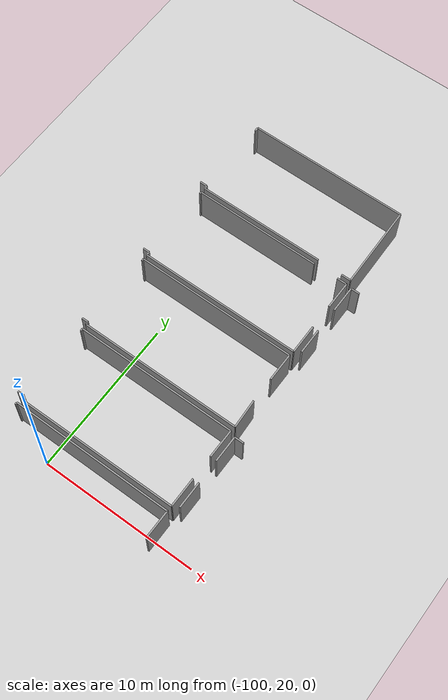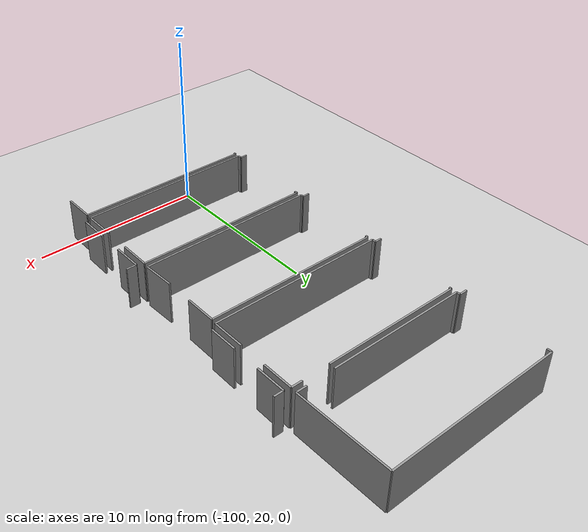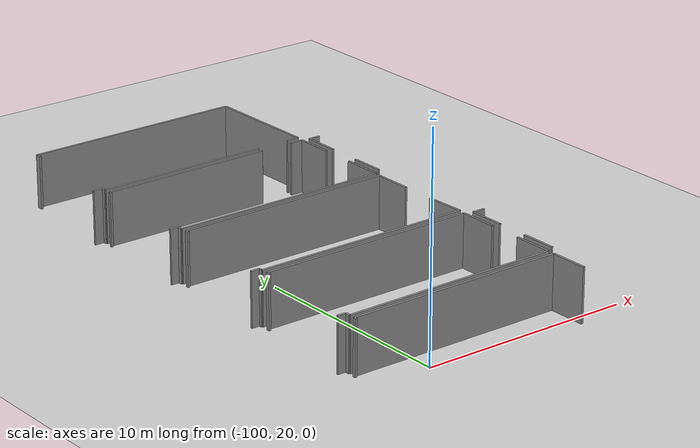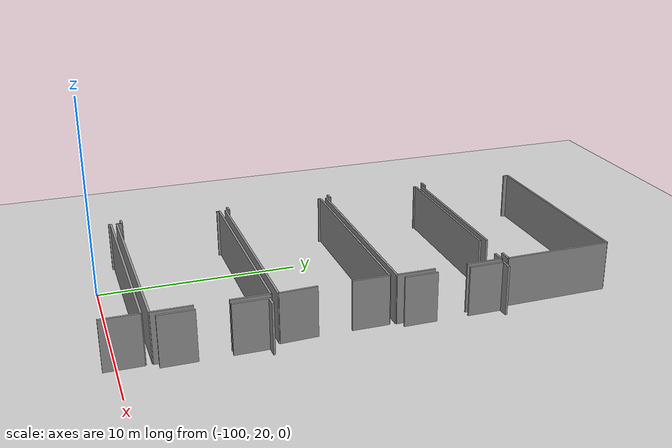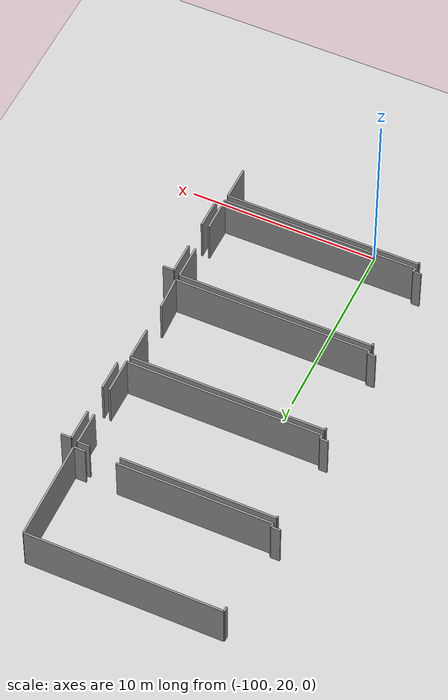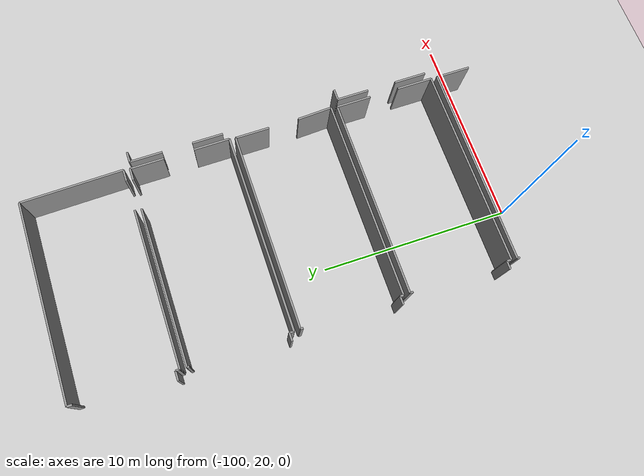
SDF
<sdf version="1.6">
 <world name="default">
  <model name="ground_plane">
   <static>1</static>
   <link name="link">
    <collision name="collision">
     <geometry><plane><normal>0 0 1</normal><size>100 100</size></plane></geometry>
     <surface><friction><ode><mu>100</mu><mu2>50</mu2></ode></friction></surface>
    </collision>
    <visual name="visual">
     <cast_shadows>0</cast_shadows>
     <geometry><plane><normal>0 0 1</normal><size>100 100</size></plane></geometry>
     <material>
      <script><uri>file://media/materials/scripts/gazebo.material</uri><name>Gazebo/Grey</name></script>
     </material>
    </visual>
   </link>
  </model>
  <model name="50015848">
   <static>1</static>
   <link name="Wall_205">
    <collision name="Wall_205_Collision">
     <geometry><box><size>1.6850091025 0.1 2.5</size></box></geometry>
     <pose>0.84250455125 0 1.25 0 0 0</pose>
    </collision>
    <visual name="Wall_205_Visual">
     <pose>0.84250455125 0 1.25 0 0 0</pose>
     <geometry><box><size>1.6850091025 0.1 2.5</size></box></geometry>
     <material>
      <script><uri>file://media/materials/scripts/gazebo.material</uri><name>Gazebo/Grey</name></script>
      <ambient>1 1 1 1</ambient>
     </material>
    </visual>
    <pose>39.7325704572 -21.994938122 0 0 0 1.57079632679</pose>
   </link>
   <link name="Wall_206">
    <collision name="Wall_206_Collision">
     <geometry><box><size>1.6943970466 0.1 2.5</size></box></geometry>
     <pose>0.847198523302 0 1.25 0 0 0</pose>
    </collision>
    <visual name="Wall_206_Visual">
     <pose>0.847198523302 0 1.25 0 0 0</pose>
     <geometry><box><size>1.6943970466 0.1 2.5</size></box></geometry>
     <material>
      <script><uri>file://media/materials/scripts/gazebo.material</uri><name>Gazebo/Grey</name></script>
      <ambient>1 1 1 1</ambient>
     </material>
    </visual>
    <pose>39.7325704572 -18.7918730851 0 0 0 1.57079632679</pose>
   </link>
   <link name="Wall_207">
    <collision name="Wall_207_Collision">
     <geometry><box><size>0.581037621552 0.1 2.5</size></box></geometry>
     <pose>0.290518810776 0 1.25 0 0 0</pose>
    </collision>
    <visual name="Wall_207_Visual">
     <pose>0.290518810776 0 1.25 0 0 0</pose>
     <geometry><box><size>0.581037621552 0.1 2.5</size></box></geometry>
     <material>
      <script><uri>file://media/materials/scripts/gazebo.material</uri><name>Gazebo/Grey</name></script>
      <ambient>1 1 1 1</ambient>
     </material>
    </visual>
    <pose>39.7325704572 -17.0974760385 0 0 0 0.0</pose>
   </link>
   <link name="Wall_215">
    <collision name="Wall_215_Collision">
     <geometry><box><size>1.63502464335 0.1 2.5</size></box></geometry>
     <pose>0.817512321677 0 1.25 0 0 0</pose>
    </collision>
    <visual name="Wall_215_Visual">
     <pose>0.817512321677 0 1.25 0 0 0</pose>
     <geometry><box><size>1.63502464335 0.1 2.5</size></box></geometry>
     <material>
      <script><uri>file://media/materials/scripts/gazebo.material</uri><name>Gazebo/Grey</name></script>
      <ambient>1 1 1 1</ambient>
     </material>
    </visual>
    <pose>39.7325704572 -10.8007028272 0 0 0 1.57079632679</pose>
   </link>
   <link name="Wall_216">
    <collision name="Wall_216_Collision">
     <geometry><box><size>1.71824749919 0.1 2.5</size></box></geometry>
     <pose>0.859123749596 0 1.25 0 0 0</pose>
    </collision>
    <visual name="Wall_216_Visual">
     <pose>0.859123749596 0 1.25 0 0 0</pose>
     <geometry><box><size>1.71824749919 0.1 2.5</size></box></geometry>
     <material>
      <script><uri>file://media/materials/scripts/gazebo.material</uri><name>Gazebo/Grey</name></script>
      <ambient>1 1 1 1</ambient>
     </material>
    </visual>
    <pose>39.7325704572 -7.56414566537 0 0 0 1.57079632679</pose>
   </link>
   <link name="Wall_217">
    <collision name="Wall_217_Collision">
     <geometry><box><size>0.550590235269 0.1 2.5</size></box></geometry>
     <pose>0.275295117635 0 1.25 0 0 0</pose>
    </collision>
    <visual name="Wall_217_Visual">
     <pose>0.275295117635 0 1.25 0 0 0</pose>
     <geometry><box><size>0.550590235269 0.1 2.5</size></box></geometry>
     <material>
      <script><uri>file://media/materials/scripts/gazebo.material</uri><name>Gazebo/Grey</name></script>
      <ambient>1 1 1 1</ambient>
     </material>
    </visual>
    <pose>39.7325704572 -5.84589816618 0 0 0 0.0</pose>
   </link>
   <link name="Wall_282">
    <collision name="Wall_282_Collision">
     <geometry><box><size>0.616305843995 0.1 2.5</size></box></geometry>
     <pose>0.308152921998 0 1.25 0 0 0</pose>
    </collision>
    <visual name="Wall_282_Visual">
     <pose>0.308152921998 0 1.25 0 0 0</pose>
     <geometry><box><size>0.616305843995 0.1 2.5</size></box></geometry>
     <material>
      <script><uri>file://media/materials/scripts/gazebo.material</uri><name>Gazebo/Grey</name></script>
      <ambient>1 1 1 1</ambient>
     </material>
    </visual>
    <pose>39.4039924135 -5.42699287658 0 0 0 3.14159265359</pose>
   </link>
   <link name="Wall_283">
    <collision name="Wall_283_Collision">
     <geometry><box><size>8.15989952363 0.1 2.5</size></box></geometry>
     <pose>4.07994976181 0 1.25 0 0 0</pose>
    </collision>
    <visual name="Wall_283_Visual">
     <pose>4.07994976181 0 1.25 0 0 0</pose>
     <geometry><box><size>8.15989952363 0.1 2.5</size></box></geometry>
     <material>
      <script><uri>file://media/materials/scripts/gazebo.material</uri><name>Gazebo/Grey</name></script>
      <ambient>1 1 1 1</ambient>
     </material>
    </visual>
    <pose>37.1610349574 -5.42699287658 0 0 0 3.14159265359</pose>
   </link>
   <link name="Wall_284">
    <collision name="Wall_284_Collision">
     <geometry><box><size>0.208818324252 0.1 2.5</size></box></geometry>
     <pose>0.104409162126 0 1.25 0 0 0</pose>
    </collision>
    <visual name="Wall_284_Visual">
     <pose>0.104409162126 0 1.25 0 0 0</pose>
     <geometry><box><size>0.208818324252 0.1 2.5</size></box></geometry>
     <material>
      <script><uri>file://media/materials/scripts/gazebo.material</uri><name>Gazebo/Grey</name></script>
      <ambient>1 1 1 1</ambient>
     </material>
    </visual>
    <pose>29.0011354338 -5.42699287658 0 0 0 1.57079632679</pose>
   </link>
   <link name="Wall_285">
    <collision name="Wall_285_Collision">
     <geometry><box><size>0.479292605725 0.1 2.5</size></box></geometry>
     <pose>0.239646302863 0 1.25 0 0 0</pose>
    </collision>
    <visual name="Wall_285_Visual">
     <pose>0.239646302863 0 1.25 0 0 0</pose>
     <geometry><box><size>0.479292605725 0.1 2.5</size></box></geometry>
     <material>
      <script><uri>file://media/materials/scripts/gazebo.material</uri><name>Gazebo/Grey</name></script>
      <ambient>1 1 1 1</ambient>
     </material>
    </visual>
    <pose>29.0011354338 -5.21817455233 0 0 0 3.14159265359</pose>
   </link>
   <link name="Wall_288">
    <collision name="Wall_288_Collision">
     <geometry><box><size>0.264892260655 0.1 2.5</size></box></geometry>
     <pose>0.132446130328 0 1.25 0 0 0</pose>
    </collision>
    <visual name="Wall_288_Visual">
     <pose>0.132446130328 0 1.25 0 0 0</pose>
     <geometry><box><size>0.264892260655 0.1 2.5</size></box></geometry>
     <material>
      <script><uri>file://media/materials/scripts/gazebo.material</uri><name>Gazebo/Grey</name></script>
      <ambient>1 1 1 1</ambient>
     </material>
    </visual>
    <pose>29.0011354338 -0.298384385565 0 0 0 1.57079632679</pose>
   </link>
   <link name="Wall_289">
    <collision name="Wall_289_Collision">
     <geometry><box><size>10.3188729393 0.1 2.5</size></box></geometry>
     <pose>5.15943646963 0 1.25 0 0 0</pose>
    </collision>
    <visual name="Wall_289_Visual">
     <pose>5.15943646963 0 1.25 0 0 0</pose>
     <geometry><box><size>10.3188729393 0.1 2.5</size></box></geometry>
     <material>
      <script><uri>file://media/materials/scripts/gazebo.material</uri><name>Gazebo/Grey</name></script>
      <ambient>1 1 1 1</ambient>
     </material>
    </visual>
    <pose>29.0011354338 -0.0334921249104 0 0 0 0.0</pose>
   </link>
   <link name="Wall_290">
    <collision name="Wall_290_Collision">
     <geometry><box><size>5.39415458411 0.1 2.5</size></box></geometry>
     <pose>2.69707729206 0 1.25 0 0 0</pose>
    </collision>
    <visual name="Wall_290_Visual">
     <pose>2.69707729206 0 1.25 0 0 0</pose>
     <geometry><box><size>5.39415458411 0.1 2.5</size></box></geometry>
     <material>
      <script><uri>file://media/materials/scripts/gazebo.material</uri><name>Gazebo/Grey</name></script>
      <ambient>1 1 1 1</ambient>
     </material>
    </visual>
    <pose>39.320008373 -0.0334921249104 0 0 0 -1.55522624392</pose>
   </link>
   <link name="Wall_291">
    <collision name="Wall_291_Collision">
     <geometry><box><size>10.3536337053 0.1 2.5</size></box></geometry>
     <pose>5.17681685263 0 1.25 0 0 0</pose>
    </collision>
    <visual name="Wall_291_Visual">
     <pose>5.17681685263 0 1.25 0 0 0</pose>
     <geometry><box><size>10.3536337053 0.1 2.5</size></box></geometry>
     <material>
      <script><uri>file://media/materials/scripts/gazebo.material</uri><name>Gazebo/Grey</name></script>
      <ambient>1 1 1 1</ambient>
     </material>
    </visual>
    <pose>39.36745555 -11.0465654714 0 0 0 3.14159265359</pose>
   </link>
   <link name="Wall_292">
    <collision name="Wall_292_Collision">
     <geometry><box><size>0.22734048424 0.1 2.5</size></box></geometry>
     <pose>0.11367024212 0 1.25 0 0 0</pose>
    </collision>
    <visual name="Wall_292_Visual">
     <pose>0.11367024212 0 1.25 0 0 0</pose>
     <geometry><box><size>0.22734048424 0.1 2.5</size></box></geometry>
     <material>
      <script><uri>file://media/materials/scripts/gazebo.material</uri><name>Gazebo/Grey</name></script>
      <ambient>1 1 1 1</ambient>
     </material>
    </visual>
    <pose>29.0138218447 -11.0465654714 0 0 0 1.57079632679</pose>
   </link>
   <link name="Wall_293">
    <collision name="Wall_293_Collision">
     <geometry><box><size>0.416368007409 0.1 2.5</size></box></geometry>
     <pose>0.208184003704 0 1.25 0 0 0</pose>
    </collision>
    <visual name="Wall_293_Visual">
     <pose>0.208184003704 0 1.25 0 0 0</pose>
     <geometry><box><size>0.416368007409 0.1 2.5</size></box></geometry>
     <material>
      <script><uri>file://media/materials/scripts/gazebo.material</uri><name>Gazebo/Grey</name></script>
      <ambient>1 1 1 1</ambient>
     </material>
    </visual>
    <pose>29.0138218447 -10.8192249872 0 0 0 3.14159265359</pose>
   </link>
   <link name="Wall_296">
    <collision name="Wall_296_Collision">
     <geometry><box><size>0.1240730991 0.1 2.5</size></box></geometry>
     <pose>0.06203654955 0 1.25 0 0 0</pose>
    </collision>
    <visual name="Wall_296_Visual">
     <pose>0.06203654955 0 1.25 0 0 0</pose>
     <geometry><box><size>0.1240730991 0.1 2.5</size></box></geometry>
     <material>
      <script><uri>file://media/materials/scripts/gazebo.material</uri><name>Gazebo/Grey</name></script>
      <ambient>1 1 1 1</ambient>
     </material>
    </visual>
    <pose>28.9846430995 -5.89309161492 0 0 0 1.57079632679</pose>
   </link>
   <link name="Wall_297">
    <collision name="Wall_297_Collision">
     <geometry><box><size>8.1461981998 0.1 2.5</size></box></geometry>
     <pose>4.0730990999 0 1.25 0 0 0</pose>
    </collision>
    <visual name="Wall_297_Visual">
     <pose>4.0730990999 0 1.25 0 0 0</pose>
     <geometry><box><size>8.1461981998 0.1 2.5</size></box></geometry>
     <material>
      <script><uri>file://media/materials/scripts/gazebo.material</uri><name>Gazebo/Grey</name></script>
      <ambient>1 1 1 1</ambient>
     </material>
    </visual>
    <pose>28.9846430995 -5.76901851582 0 0 0 0.0</pose>
   </link>
   <link name="Wall_298">
    <collision name="Wall_298_Collision">
     <geometry><box><size>0.633813091107 0.1 2.5</size></box></geometry>
     <pose>0.316906545554 0 1.25 0 0 0</pose>
    </collision>
    <visual name="Wall_298_Visual">
     <pose>0.316906545554 0 1.25 0 0 0</pose>
     <geometry><box><size>0.633813091107 0.1 2.5</size></box></geometry>
     <material>
      <script><uri>file://media/materials/scripts/gazebo.material</uri><name>Gazebo/Grey</name></script>
      <ambient>1 1 1 1</ambient>
     </material>
    </visual>
    <pose>38.7316126331 -5.76901851582 0 0 0 0.0</pose>
   </link>
   <link name="Wall_299">
    <collision name="Wall_299_Collision">
     <geometry><box><size>1.77584380491 0.1 2.5</size></box></geometry>
     <pose>0.887921902454 0 1.25 0 0 0</pose>
    </collision>
    <visual name="Wall_299_Visual">
     <pose>0.887921902454 0 1.25 0 0 0</pose>
     <geometry><box><size>1.77584380491 0.1 2.5</size></box></geometry>
     <material>
      <script><uri>file://media/materials/scripts/gazebo.material</uri><name>Gazebo/Grey</name></script>
      <ambient>1 1 1 1</ambient>
     </material>
    </visual>
    <pose>39.3654257242 -5.76901851582 0 0 0 -1.57079632679</pose>
   </link>
   <link name="Wall_300">
    <collision name="Wall_300_Collision">
     <geometry><box><size>1.89890307602 0.1 2.5</size></box></geometry>
     <pose>0.94945153801 0 1.25 0 0 0</pose>
    </collision>
    <visual name="Wall_300_Visual">
     <pose>0.94945153801 0 1.25 0 0 0</pose>
     <geometry><box><size>1.89890307602 0.1 2.5</size></box></geometry>
     <material>
      <script><uri>file://media/materials/scripts/gazebo.material</uri><name>Gazebo/Grey</name></script>
      <ambient>1 1 1 1</ambient>
     </material>
    </visual>
    <pose>39.3654257242 -9.14766348026 0 0 0 -1.56972738011</pose>
   </link>
   <link name="Wall_301">
    <collision name="Wall_301_Collision">
     <geometry><box><size>10.3863646455 0.1 2.5</size></box></geometry>
     <pose>5.19318232275 0 1.25 0 0 0</pose>
    </collision>
    <visual name="Wall_301_Visual">
     <pose>5.19318232275 0 1.25 0 0 0</pose>
     <geometry><box><size>10.3863646455 0.1 2.5</size></box></geometry>
     <material>
      <script><uri>file://media/materials/scripts/gazebo.material</uri><name>Gazebo/Grey</name></script>
      <ambient>1 1 1 1</ambient>
     </material>
    </visual>
    <pose>39.3989178491 -16.6065119347 0 0 0 3.14159265359</pose>
   </link>
   <link name="Wall_302">
    <collision name="Wall_302_Collision">
     <geometry><box><size>0.176341112218 0.1 2.5</size></box></geometry>
     <pose>0.0881705561088 0 1.25 0 0 0</pose>
    </collision>
    <visual name="Wall_302_Visual">
     <pose>0.0881705561088 0 1.25 0 0 0</pose>
     <geometry><box><size>0.176341112218 0.1 2.5</size></box></geometry>
     <material>
      <script><uri>file://media/materials/scripts/gazebo.material</uri><name>Gazebo/Grey</name></script>
      <ambient>1 1 1 1</ambient>
     </material>
    </visual>
    <pose>29.0125532036 -16.6065119347 0 0 0 1.57079632679</pose>
   </link>
   <link name="Wall_303">
    <collision name="Wall_303_Collision">
     <geometry><box><size>0.420681387132 0.1 2.5</size></box></geometry>
     <pose>0.210340693566 0 1.25 0 0 0</pose>
    </collision>
    <visual name="Wall_303_Visual">
     <pose>0.210340693566 0 1.25 0 0 0</pose>
     <geometry><box><size>0.420681387132 0.1 2.5</size></box></geometry>
     <material>
      <script><uri>file://media/materials/scripts/gazebo.material</uri><name>Gazebo/Grey</name></script>
      <ambient>1 1 1 1</ambient>
     </material>
    </visual>
    <pose>29.0125532036 -16.4301708225 0 0 0 3.14159265359</pose>
   </link>
   <link name="Wall_306">
    <collision name="Wall_306_Collision">
     <geometry><box><size>0.145132541278 0.1 2.5</size></box></geometry>
     <pose>0.0725662706392 0 1.25 0 0 0</pose>
    </collision>
    <visual name="Wall_306_Visual">
     <pose>0.0725662706392 0 1.25 0 0 0</pose>
     <geometry><box><size>0.145132541278 0.1 2.5</size></box></geometry>
     <material>
      <script><uri>file://media/materials/scripts/gazebo.material</uri><name>Gazebo/Grey</name></script>
      <ambient>1 1 1 1</ambient>
     </material>
    </visual>
    <pose>29.0270157121 -11.5124104815 0 0 0 1.57079632679</pose>
   </link>
   <link name="Wall_307">
    <collision name="Wall_307_Collision">
     <geometry><box><size>10.2871569119 0.1 2.5</size></box></geometry>
     <pose>5.14357845594 0 1.25 0 0 0</pose>
    </collision>
    <visual name="Wall_307_Visual">
     <pose>5.14357845594 0 1.25 0 0 0</pose>
     <geometry><box><size>10.2871569119 0.1 2.5</size></box></geometry>
     <material>
      <script><uri>file://media/materials/scripts/gazebo.material</uri><name>Gazebo/Grey</name></script>
      <ambient>1 1 1 1</ambient>
     </material>
    </visual>
    <pose>29.0270157121 -11.3672779402 0 0 0 0.0</pose>
   </link>
   <link name="Wall_308">
    <collision name="Wall_308_Collision">
     <geometry><box><size>1.80476882188 0.1 2.5</size></box></geometry>
     <pose>0.902384410938 0 1.25 0 0 0</pose>
    </collision>
    <visual name="Wall_308_Visual">
     <pose>0.902384410938 0 1.25 0 0 0</pose>
     <geometry><box><size>1.80476882188 0.1 2.5</size></box></geometry>
     <material>
      <script><uri>file://media/materials/scripts/gazebo.material</uri><name>Gazebo/Grey</name></script>
      <ambient>1 1 1 1</ambient>
     </material>
    </visual>
    <pose>39.314172624 -11.3672779402 0 0 0 -1.57079632679</pose>
   </link>
   <link name="Wall_309">
    <collision name="Wall_309_Collision">
     <geometry><box><size>1.83210266892 0.1 2.5</size></box></geometry>
     <pose>0.916051334462 0 1.25 0 0 0</pose>
    </collision>
    <visual name="Wall_309_Visual">
     <pose>0.916051334462 0 1.25 0 0 0</pose>
     <geometry><box><size>1.83210266892 0.1 2.5</size></box></geometry>
     <material>
      <script><uri>file://media/materials/scripts/gazebo.material</uri><name>Gazebo/Grey</name></script>
      <ambient>1 1 1 1</ambient>
     </material>
    </visual>
    <pose>39.314172624 -14.776370291 0 0 0 -1.52452409776</pose>
   </link>
   <link name="Wall_310">
    <collision name="Wall_310_Collision">
     <geometry><box><size>0.241295536286 0.1 2.5</size></box></geometry>
     <pose>0.120647768143 0 1.25 0 0 0</pose>
    </collision>
    <visual name="Wall_310_Visual">
     <pose>0.120647768143 0 1.25 0 0 0</pose>
     <geometry><box><size>0.241295536286 0.1 2.5</size></box></geometry>
     <material>
      <script><uri>file://media/materials/scripts/gazebo.material</uri><name>Gazebo/Grey</name></script>
      <ambient>1 1 1 1</ambient>
     </material>
    </visual>
    <pose>29.0138218447 -22.2435917767 0 0 0 1.57079632679</pose>
   </link>
   <link name="Wall_311">
    <collision name="Wall_311_Collision">
     <geometry><box><size>0.416875463847 0.1 2.5</size></box></geometry>
     <pose>0.208437731923 0 1.25 0 0 0</pose>
    </collision>
    <visual name="Wall_311_Visual">
     <pose>0.208437731923 0 1.25 0 0 0</pose>
     <geometry><box><size>0.416875463847 0.1 2.5</size></box></geometry>
     <material>
      <script><uri>file://media/materials/scripts/gazebo.material</uri><name>Gazebo/Grey</name></script>
      <ambient>1 1 1 1</ambient>
     </material>
    </visual>
    <pose>29.0138218447 -22.0022962404 0 0 0 3.14159265359</pose>
   </link>
   <link name="Wall_314">
    <collision name="Wall_314_Collision">
     <geometry><box><size>0.164415885924 0.1 2.5</size></box></geometry>
     <pose>0.0822079429619 0 1.25 0 0 0</pose>
    </collision>
    <visual name="Wall_314_Visual">
     <pose>0.0822079429619 0 1.25 0 0 0</pose>
     <geometry><box><size>0.164415885924 0.1 2.5</size></box></geometry>
     <material>
      <script><uri>file://media/materials/scripts/gazebo.material</uri><name>Gazebo/Grey</name></script>
      <ambient>1 1 1 1</ambient>
     </material>
    </visual>
    <pose>29.0247321581 -17.0989984079 0 0 0 1.57079632679</pose>
   </link>
   <link name="Wall_315">
    <collision name="Wall_315_Collision">
     <geometry><box><size>10.3221714061 0.1 2.5</size></box></geometry>
     <pose>5.16108570305 0 1.25 0 0 0</pose>
    </collision>
    <visual name="Wall_315_Visual">
     <pose>5.16108570305 0 1.25 0 0 0</pose>
     <geometry><box><size>10.3221714061 0.1 2.5</size></box></geometry>
     <material>
      <script><uri>file://media/materials/scripts/gazebo.material</uri><name>Gazebo/Grey</name></script>
      <ambient>1 1 1 1</ambient>
     </material>
    </visual>
    <pose>29.0247321581 -16.9345825219 0 0 0 0.0</pose>
   </link>
   <link name="Wall_316">
    <collision name="Wall_316_Collision">
     <geometry><box><size>1.83191774131 0.1 2.5</size></box></geometry>
     <pose>0.915958870656 0 1.25 0 0 0</pose>
    </collision>
    <visual name="Wall_316_Visual">
     <pose>0.915958870656 0 1.25 0 0 0</pose>
     <geometry><box><size>1.83191774131 0.1 2.5</size></box></geometry>
     <material>
      <script><uri>file://media/materials/scripts/gazebo.material</uri><name>Gazebo/Grey</name></script>
      <ambient>1 1 1 1</ambient>
     </material>
    </visual>
    <pose>39.3469035642 -16.9345825219 0 0 0 -1.57079632679</pose>
   </link>
   <link name="Wall_317">
    <collision name="Wall_317_Collision">
     <geometry><box><size>1.87961864649 0.1 2.5</size></box></geometry>
     <pose>0.939809323243 0 1.25 0 0 0</pose>
    </collision>
    <visual name="Wall_317_Visual">
     <pose>0.939809323243 0 1.25 0 0 0</pose>
     <geometry><box><size>1.87961864649 0.1 2.5</size></box></geometry>
     <material>
      <script><uri>file://media/materials/scripts/gazebo.material</uri><name>Gazebo/Grey</name></script>
      <ambient>1 1 1 1</ambient>
     </material>
    </visual>
    <pose>39.3469035642 -20.3180483225 0 0 0 -1.57079632679</pose>
   </link>
   <link name="Wall_318">
    <collision name="Wall_318_Collision">
     <geometry><box><size>10.3331837741 0.1 2.5</size></box></geometry>
     <pose>5.16659188707 0 1.25 0 0 0</pose>
    </collision>
    <visual name="Wall_318_Visual">
     <pose>5.16659188707 0 1.25 0 0 0</pose>
     <geometry><box><size>10.3331837741 0.1 2.5</size></box></geometry>
     <material>
      <script><uri>file://media/materials/scripts/gazebo.material</uri><name>Gazebo/Grey</name></script>
      <ambient>1 1 1 1</ambient>
     </material>
    </visual>
    <pose>39.3469035642 -22.197666969 0 0 0 -3.13714823841</pose>
   </link>
   <link name="Wall_323">
    <collision name="Wall_323_Collision">
     <geometry><box><size>0.138789335803 0.1 2.5</size></box></geometry>
     <pose>0.0693946679015 0 1.25 0 0 0</pose>
    </collision>
    <visual name="Wall_323_Visual">
     <pose>0.0693946679015 0 1.25 0 0 0</pose>
     <geometry><box><size>0.138789335803 0.1 2.5</size></box></geometry>
     <material>
      <script><uri>file://media/materials/scripts/gazebo.material</uri><name>Gazebo/Grey</name></script>
      <ambient>1 1 1 1</ambient>
     </material>
    </visual>
    <pose>28.988702751 -22.6769595748 0 0 0 1.57079632679</pose>
   </link>
   <link name="Wall_324">
    <collision name="Wall_324_Collision">
     <geometry><box><size>10.3439920329 0.1 2.5</size></box></geometry>
     <pose>5.17199601647 0 1.25 0 0 0</pose>
    </collision>
    <visual name="Wall_324_Visual">
     <pose>5.17199601647 0 1.25 0 0 0</pose>
     <geometry><box><size>10.3439920329 0.1 2.5</size></box></geometry>
     <material>
      <script><uri>file://media/materials/scripts/gazebo.material</uri><name>Gazebo/Grey</name></script>
      <ambient>1 1 1 1</ambient>
     </material>
    </visual>
    <pose>28.988702751 -22.5381702389 0 0 0 0.0</pose>
   </link>
   <link name="Wall_325">
    <collision name="Wall_325_Collision">
     <geometry><box><size>1.80248526791 0.1 2.5</size></box></geometry>
     <pose>0.901242633953 0 1.25 0 0 0</pose>
    </collision>
    <visual name="Wall_325_Visual">
     <pose>0.901242633953 0 1.25 0 0 0</pose>
     <geometry><box><size>1.80248526791 0.1 2.5</size></box></geometry>
     <material>
      <script><uri>file://media/materials/scripts/gazebo.material</uri><name>Gazebo/Grey</name></script>
      <ambient>1 1 1 1</ambient>
     </material>
    </visual>
    <pose>39.332694784 -22.5381702389 0 0 0 -1.57079632679</pose>
   </link>
   <pose>-131.8 43.7717730528 0 0 0 0</pose>
  </model>
 </world>
</sdf>
